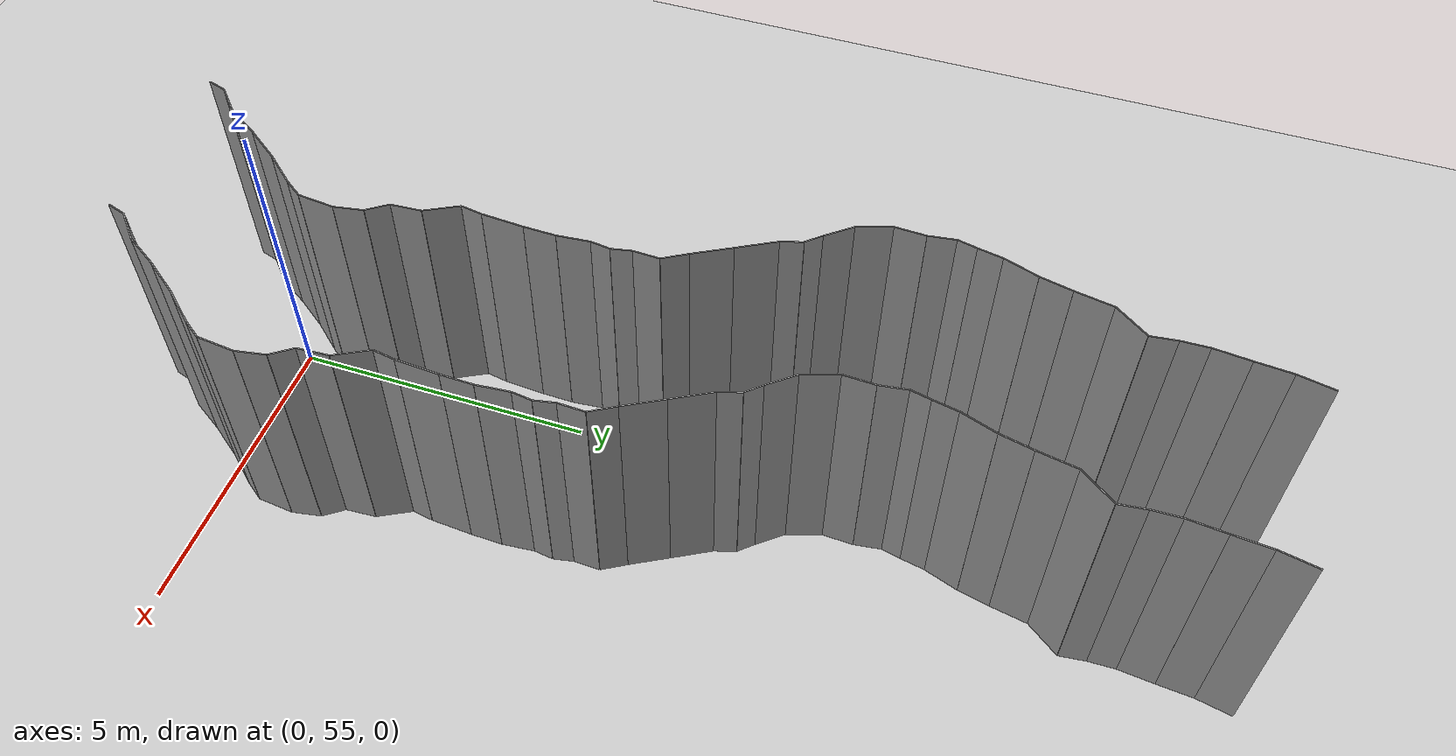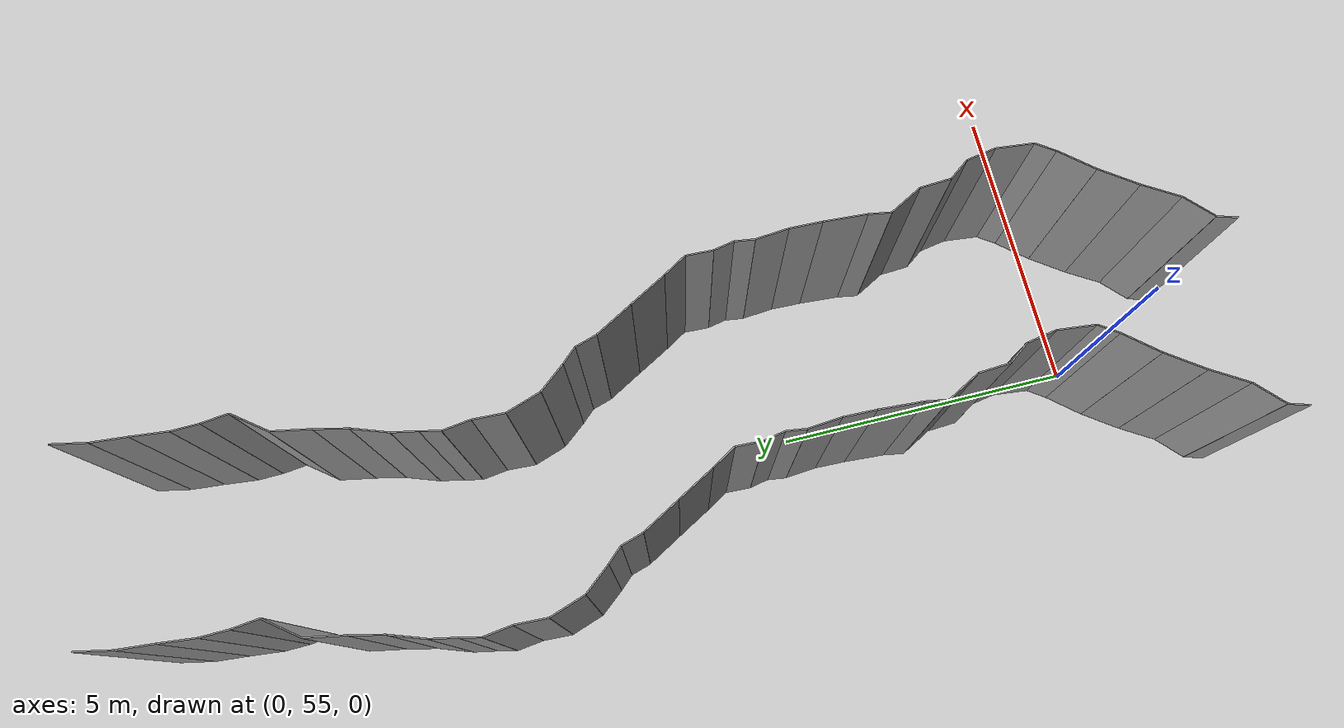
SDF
<sdf version="1.6">
 <world name="default">
  <model name="ground_plane">
   <static>1</static>
   <link name="link">
    <collision name="collision">
     <geometry><plane><normal>0 0 1</normal><size>200 200</size></plane></geometry>
     <surface><friction><ode><mu>100</mu><mu2>50</mu2></ode></friction></surface>
    </collision>
    <visual name="visual">
     <cast_shadows>0</cast_shadows>
     <geometry><plane><normal>0 0 1</normal><size>200 200</size></plane></geometry>
     <material>
      <script><uri>file://media/materials/scripts/gazebo.material</uri><name>Gazebo/Grey</name></script>
     </material>
    </visual>
   </link>
   <pose>0 100 0 0 -0 0</pose>
  </model>
  <model name="wall_224">
   <static>1</static>
   <pose>-1.9449735678447158 53.137342538818686 2 0 0 -0.3003120279993837</pose>
   <link name="link">
    <collision name="collision"><geometry><box><size>0.02 0.329760382934 4</size></box></geometry></collision>
    <visual name="visual">
     <material>
      <script><name>Gazebo/Grey</name><uri>file://media/materials/scripts/gazebo.material</uri></script>
     </material>
     <geometry><box><size>0.02 0.329760382934 4</size></box></geometry>
    </visual>
   </link>
  </model>
  <model name="wall_225">
   <static>1</static>
   <pose>1.0550264321552842 53.137342538818686 2 0 0 -0.3003120279993837</pose>
   <link name="link">
    <collision name="collision"><geometry><box><size>0.02 0.329760382934 4</size></box></geometry></collision>
    <visual name="visual">
     <material>
      <script><name>Gazebo/Grey</name><uri>file://media/materials/scripts/gazebo.material</uri></script>
     </material>
     <geometry><box><size>0.02 0.329760382934 4</size></box></geometry>
    </visual>
   </link>
  </model>
  <model name="wall_226">
   <static>1</static>
   <pose>-1.686195022823692 53.490703709519394 2 0 0 -0.8202322941985053</pose>
   <link name="link">
    <collision name="collision"><geometry><box><size>0.02 0.574327195197 4</size></box></geometry></collision>
    <visual name="visual">
     <material>
      <script><name>Gazebo/Grey</name><uri>file://media/materials/scripts/gazebo.material</uri></script>
     </material>
     <geometry><box><size>0.02 0.574327195197 4</size></box></geometry>
    </visual>
   </link>
  </model>
  <model name="wall_227">
   <static>1</static>
   <pose>1.313804977176308 53.490703709519394 2 0 0 -0.8202322941985053</pose>
   <link name="link">
    <collision name="collision"><geometry><box><size>0.02 0.574327195197 4</size></box></geometry></collision>
    <visual name="visual">
     <material>
      <script><name>Gazebo/Grey</name><uri>file://media/materials/scripts/gazebo.material</uri></script>
     </material>
     <geometry><box><size>0.02 0.574327195197 4</size></box></geometry>
    </visual>
   </link>
  </model>
  <model name="wall_228">
   <static>1</static>
   <pose>-1.3065006371710464 53.96184421103276 2 0 0 -0.5524114289660902</pose>
   <link name="link">
    <collision name="collision"><geometry><box><size>0.02 0.64675811937 4</size></box></geometry></collision>
    <visual name="visual">
     <material>
      <script><name>Gazebo/Grey</name><uri>file://media/materials/scripts/gazebo.material</uri></script>
     </material>
     <geometry><box><size>0.02 0.64675811937 4</size></box></geometry>
    </visual>
   </link>
  </model>
  <model name="wall_229">
   <static>1</static>
   <pose>1.6934993628289536 53.96184421103276 2 0 0 -0.5524114289660902</pose>
   <link name="link">
    <collision name="collision"><geometry><box><size>0.02 0.64675811937 4</size></box></geometry></collision>
    <visual name="visual">
     <material>
      <script><name>Gazebo/Grey</name><uri>file://media/materials/scripts/gazebo.material</uri></script>
     </material>
     <geometry><box><size>0.02 0.64675811937 4</size></box></geometry>
    </visual>
   </link>
  </model>
  <model name="wall_230">
   <static>1</static>
   <pose>-0.9351453693108156 54.51873689497037 2 0 0 -0.6214548294160449</pose>
   <link name="link">
    <collision name="collision"><geometry><box><size>0.02 0.692746168117 4</size></box></geometry></collision>
    <visual name="visual">
     <material>
      <script><name>Gazebo/Grey</name><uri>file://media/materials/scripts/gazebo.material</uri></script>
     </material>
     <geometry><box><size>0.02 0.692746168117 4</size></box></geometry>
    </visual>
   </link>
  </model>
  <model name="wall_231">
   <static>1</static>
   <pose>2.0648546306891844 54.51873689497037 2 0 0 -0.6214548294160449</pose>
   <link name="link">
    <collision name="collision"><geometry><box><size>0.02 0.692746168117 4</size></box></geometry></collision>
    <visual name="visual">
     <material>
      <script><name>Gazebo/Grey</name><uri>file://media/materials/scripts/gazebo.material</uri></script>
     </material>
     <geometry><box><size>0.02 0.692746168117 4</size></box></geometry>
    </visual>
   </link>
  </model>
  <model name="wall_232">
   <static>1</static>
   <pose>-0.5178004614418645 55.053667694533964 2 0 0 -0.7053173902595483</pose>
   <link name="link">
    <collision name="collision"><geometry><box><size>0.02 0.665396263273 4</size></box></geometry></collision>
    <visual name="visual">
     <material>
      <script><name>Gazebo/Grey</name><uri>file://media/materials/scripts/gazebo.material</uri></script>
     </material>
     <geometry><box><size>0.02 0.665396263273 4</size></box></geometry>
    </visual>
   </link>
  </model>
  <model name="wall_233">
   <static>1</static>
   <pose>2.4821995385581355 55.053667694533964 2 0 0 -0.7053173902595483</pose>
   <link name="link">
    <collision name="collision"><geometry><box><size>0.02 0.665396263273 4</size></box></geometry></collision>
    <visual name="visual">
     <material>
      <script><name>Gazebo/Grey</name><uri>file://media/materials/scripts/gazebo.material</uri></script>
     </material>
     <geometry><box><size>0.02 0.665396263273 4</size></box></geometry>
    </visual>
   </link>
  </model>
  <model name="wall_234">
   <static>1</static>
   <pose>-0.20020133641051413 55.45377711792558 2 0 0 -0.6068993597224305</pose>
   <link name="link">
    <collision name="collision"><geometry><box><size>0.02 0.357408063951 4</size></box></geometry></collision>
    <visual name="visual">
     <material>
      <script><name>Gazebo/Grey</name><uri>file://media/materials/scripts/gazebo.material</uri></script>
     </material>
     <geometry><box><size>0.02 0.357408063951 4</size></box></geometry>
    </visual>
   </link>
  </model>
  <model name="wall_235">
   <static>1</static>
   <pose>2.799798663589486 55.45377711792558 2 0 0 -0.6068993597224305</pose>
   <link name="link">
    <collision name="collision"><geometry><box><size>0.02 0.357408063951 4</size></box></geometry></collision>
    <visual name="visual">
     <material>
      <script><name>Gazebo/Grey</name><uri>file://media/materials/scripts/gazebo.material</uri></script>
     </material>
     <geometry><box><size>0.02 0.357408063951 4</size></box></geometry>
    </visual>
   </link>
  </model>
  <model name="wall_236">
   <static>1</static>
   <pose>-0.06674007359757828 55.90515720736865 2 0 0 -0.10318877210391868</pose>
   <link name="link">
    <collision name="collision"><geometry><box><size>0.02 0.612435620124 4</size></box></geometry></collision>
    <visual name="visual">
     <material>
      <script><name>Gazebo/Grey</name><uri>file://media/materials/scripts/gazebo.material</uri></script>
     </material>
     <geometry><box><size>0.02 0.612435620124 4</size></box></geometry>
    </visual>
   </link>
  </model>
  <model name="wall_237">
   <static>1</static>
   <pose>2.933259926402422 55.90515720736865 2 0 0 -0.10318877210391868</pose>
   <link name="link">
    <collision name="collision"><geometry><box><size>0.02 0.612435620124 4</size></box></geometry></collision>
    <visual name="visual">
     <material>
      <script><name>Gazebo/Grey</name><uri>file://media/materials/scripts/gazebo.material</uri></script>
     </material>
     <geometry><box><size>0.02 0.612435620124 4</size></box></geometry>
    </visual>
   </link>
  </model>
  <model name="wall_238">
   <static>1</static>
   <pose>-0.07769156851695419 56.44998617409877 2 0 0 0.17506936760792238</pose>
   <link name="link">
    <collision name="collision"><geometry><box><size>0.02 0.487938407221 4</size></box></geometry></collision>
    <visual name="visual">
     <material>
      <script><name>Gazebo/Grey</name><uri>file://media/materials/scripts/gazebo.material</uri></script>
     </material>
     <geometry><box><size>0.02 0.487938407221 4</size></box></geometry>
    </visual>
   </link>
  </model>
  <model name="wall_239">
   <static>1</static>
   <pose>2.922308431483046 56.44998617409877 2 0 0 0.17506936760792238</pose>
   <link name="link">
    <collision name="collision"><geometry><box><size>0.02 0.487938407221 4</size></box></geometry></collision>
    <visual name="visual">
     <material>
      <script><name>Gazebo/Grey</name><uri>file://media/materials/scripts/gazebo.material</uri></script>
     </material>
     <geometry><box><size>0.02 0.487938407221 4</size></box></geometry>
    </visual>
   </link>
  </model>
  <model name="wall_240">
   <static>1</static>
   <pose>-0.23872327364758544 56.851449280253924 2 0 0 0.6339889679577372</pose>
   <link name="link">
    <collision name="collision"><geometry><box><size>0.02 0.40022069186 4</size></box></geometry></collision>
    <visual name="visual">
     <material>
      <script><name>Gazebo/Grey</name><uri>file://media/materials/scripts/gazebo.material</uri></script>
     </material>
     <geometry><box><size>0.02 0.40022069186 4</size></box></geometry>
    </visual>
   </link>
  </model>
  <model name="wall_241">
   <static>1</static>
   <pose>2.7612767263524147 56.851449280253924 2 0 0 0.6339889679577372</pose>
   <link name="link">
    <collision name="collision"><geometry><box><size>0.02 0.40022069186 4</size></box></geometry></collision>
    <visual name="visual">
     <material>
      <script><name>Gazebo/Grey</name><uri>file://media/materials/scripts/gazebo.material</uri></script>
     </material>
     <geometry><box><size>0.02 0.40022069186 4</size></box></geometry>
    </visual>
   </link>
  </model>
  <model name="wall_242">
   <static>1</static>
   <pose>-0.372732833279823 57.26623104111561 2 0 0 0.06094205244157964</pose>
   <link name="link">
    <collision name="collision"><geometry><box><size>0.02 0.508060473654 4</size></box></geometry></collision>
    <visual name="visual">
     <material>
      <script><name>Gazebo/Grey</name><uri>file://media/materials/scripts/gazebo.material</uri></script>
     </material>
     <geometry><box><size>0.02 0.508060473654 4</size></box></geometry>
    </visual>
   </link>
  </model>
  <model name="wall_243">
   <static>1</static>
   <pose>2.627267166720177 57.26623104111561 2 0 0 0.06094205244157964</pose>
   <link name="link">
    <collision name="collision"><geometry><box><size>0.02 0.508060473654 4</size></box></geometry></collision>
    <visual name="visual">
     <material>
      <script><name>Gazebo/Grey</name><uri>file://media/materials/scripts/gazebo.material</uri></script>
     </material>
     <geometry><box><size>0.02 0.508060473654 4</size></box></geometry>
    </visual>
   </link>
  </model>
  <model name="wall_244">
   <static>1</static>
   <pose>-0.5304146537709179 57.78406428593093 2 0 0 0.49367314558634917</pose>
   <link name="link">
    <collision name="collision"><geometry><box><size>0.02 0.600216030142 4</size></box></geometry></collision>
    <visual name="visual">
     <material>
      <script><name>Gazebo/Grey</name><uri>file://media/materials/scripts/gazebo.material</uri></script>
     </material>
     <geometry><box><size>0.02 0.600216030142 4</size></box></geometry>
    </visual>
   </link>
  </model>
  <model name="wall_245">
   <static>1</static>
   <pose>2.469585346229082 57.78406428593093 2 0 0 0.49367314558634917</pose>
   <link name="link">
    <collision name="collision"><geometry><box><size>0.02 0.600216030142 4</size></box></geometry></collision>
    <visual name="visual">
     <material>
      <script><name>Gazebo/Grey</name><uri>file://media/materials/scripts/gazebo.material</uri></script>
     </material>
     <geometry><box><size>0.02 0.600216030142 4</size></box></geometry>
    </visual>
   </link>
  </model>
  <model name="wall_246">
   <static>1</static>
   <pose>-0.6430417083869369 58.22707455624834 2 0 0 -0.16402676388929902</pose>
   <link name="link">
    <collision name="collision"><geometry><box><size>0.02 0.36233471427 4</size></box></geometry></collision>
    <visual name="visual">
     <material>
      <script><name>Gazebo/Grey</name><uri>file://media/materials/scripts/gazebo.material</uri></script>
     </material>
     <geometry><box><size>0.02 0.36233471427 4</size></box></geometry>
    </visual>
   </link>
  </model>
  <model name="wall_247">
   <static>1</static>
   <pose>2.356958291613063 58.22707455624834 2 0 0 -0.16402676388929902</pose>
   <link name="link">
    <collision name="collision"><geometry><box><size>0.02 0.36233471427 4</size></box></geometry></collision>
    <visual name="visual">
     <material>
      <script><name>Gazebo/Grey</name><uri>file://media/materials/scripts/gazebo.material</uri></script>
     </material>
     <geometry><box><size>0.02 0.36233471427 4</size></box></geometry>
    </visual>
   </link>
  </model>
  <model name="wall_248">
   <static>1</static>
   <pose>-0.5906330013064822 58.754899079173875 2 0 0 -0.06529294609087431</pose>
   <link name="link">
    <collision name="collision"><geometry><box><size>0.02 0.699668553518 4</size></box></geometry></collision>
    <visual name="visual">
     <material>
      <script><name>Gazebo/Grey</name><uri>file://media/materials/scripts/gazebo.material</uri></script>
     </material>
     <geometry><box><size>0.02 0.699668553518 4</size></box></geometry>
    </visual>
   </link>
  </model>
  <model name="wall_249">
   <static>1</static>
   <pose>2.4093669986935176 58.754899079173875 2 0 0 -0.06529294609087431</pose>
   <link name="link">
    <collision name="collision"><geometry><box><size>0.02 0.699668553518 4</size></box></geometry></collision>
    <visual name="visual">
     <material>
      <script><name>Gazebo/Grey</name><uri>file://media/materials/scripts/gazebo.material</uri></script>
     </material>
     <geometry><box><size>0.02 0.699668553518 4</size></box></geometry>
    </visual>
   </link>
  </model>
  <model name="wall_250">
   <static>1</static>
   <pose>-0.5607368006929969 59.36795824437195 2 0 0 -0.026779623550370522</pose>
   <link name="link">
    <collision name="collision"><geometry><box><size>0.02 0.528130012125 4</size></box></geometry></collision>
    <visual name="visual">
     <material>
      <script><name>Gazebo/Grey</name><uri>file://media/materials/scripts/gazebo.material</uri></script>
     </material>
     <geometry><box><size>0.02 0.528130012125 4</size></box></geometry>
    </visual>
   </link>
  </model>
  <model name="wall_251">
   <static>1</static>
   <pose>2.4392631993070033 59.36795824437195 2 0 0 -0.026779623550370522</pose>
   <link name="link">
    <collision name="collision"><geometry><box><size>0.02 0.528130012125 4</size></box></geometry></collision>
    <visual name="visual">
     <material>
      <script><name>Gazebo/Grey</name><uri>file://media/materials/scripts/gazebo.material</uri></script>
     </material>
     <geometry><box><size>0.02 0.528130012125 4</size></box></geometry>
    </visual>
   </link>
  </model>
  <model name="wall_252">
   <static>1</static>
   <pose>-0.5772860545529843 59.900032379019784 2 0 0 0.08787321359918873</pose>
   <link name="link">
    <collision name="collision"><geometry><box><size>0.02 0.538284518892 4</size></box></geometry></collision>
    <visual name="visual">
     <material>
      <script><name>Gazebo/Grey</name><uri>file://media/materials/scripts/gazebo.material</uri></script>
     </material>
     <geometry><box><size>0.02 0.538284518892 4</size></box></geometry>
    </visual>
   </link>
  </model>
  <model name="wall_253">
   <static>1</static>
   <pose>2.4227139454470157 59.900032379019784 2 0 0 0.08787321359918873</pose>
   <link name="link">
    <collision name="collision"><geometry><box><size>0.02 0.538284518892 4</size></box></geometry></collision>
    <visual name="visual">
     <material>
      <script><name>Gazebo/Grey</name><uri>file://media/materials/scripts/gazebo.material</uri></script>
     </material>
     <geometry><box><size>0.02 0.538284518892 4</size></box></geometry>
    </visual>
   </link>
  </model>
  <model name="wall_254">
   <static>1</static>
   <pose>-0.5789524795383816 60.329274231389505 2 0 0 -0.13540693106525903</pose>
   <link name="link">
    <collision name="collision"><geometry><box><size>0.02 0.325253297637 4</size></box></geometry></collision>
    <visual name="visual">
     <material>
      <script><name>Gazebo/Grey</name><uri>file://media/materials/scripts/gazebo.material</uri></script>
     </material>
     <geometry><box><size>0.02 0.325253297637 4</size></box></geometry>
    </visual>
   </link>
  </model>
  <model name="wall_255">
   <static>1</static>
   <pose>2.4210475204616184 60.329274231389505 2 0 0 -0.13540693106525903</pose>
   <link name="link">
    <collision name="collision"><geometry><box><size>0.02 0.325253297637 4</size></box></geometry></collision>
    <visual name="visual">
     <material>
      <script><name>Gazebo/Grey</name><uri>file://media/materials/scripts/gazebo.material</uri></script>
     </material>
     <geometry><box><size>0.02 0.325253297637 4</size></box></geometry>
    </visual>
   </link>
  </model>
  <model name="wall_256">
   <static>1</static>
   <pose>-0.5900085892989108 60.65608827236799 2 0 0 0.19666682595820997</pose>
   <link name="link">
    <collision name="collision"><geometry><box><size>0.02 0.33786490653 4</size></box></geometry></collision>
    <visual name="visual">
     <material>
      <script><name>Gazebo/Grey</name><uri>file://media/materials/scripts/gazebo.material</uri></script>
     </material>
     <geometry><box><size>0.02 0.33786490653 4</size></box></geometry>
    </visual>
   </link>
  </model>
  <model name="wall_257">
   <static>1</static>
   <pose>2.4099914107010894 60.65608827236799 2 0 0 0.19666682595820997</pose>
   <link name="link">
    <collision name="collision"><geometry><box><size>0.02 0.33786490653 4</size></box></geometry></collision>
    <visual name="visual">
     <material>
      <script><name>Gazebo/Grey</name><uri>file://media/materials/scripts/gazebo.material</uri></script>
     </material>
     <geometry><box><size>0.02 0.33786490653 4</size></box></geometry>
    </visual>
   </link>
  </model>
  <model name="wall_258">
   <static>1</static>
   <pose>-0.6139227929413609 61.03855653230782 2 0 0 -0.041930095776834556</pose>
   <link name="link">
    <collision name="collision"><geometry><box><size>0.02 0.433965952082 4</size></box></geometry></collision>
    <visual name="visual">
     <material>
      <script><name>Gazebo/Grey</name><uri>file://media/materials/scripts/gazebo.material</uri></script>
     </material>
     <geometry><box><size>0.02 0.433965952082 4</size></box></geometry>
    </visual>
   </link>
  </model>
  <model name="wall_259">
   <static>1</static>
   <pose>2.386077207058639 61.03855653230782 2 0 0 -0.041930095776834556</pose>
   <link name="link">
    <collision name="collision"><geometry><box><size>0.02 0.433965952082 4</size></box></geometry></collision>
    <visual name="visual">
     <material>
      <script><name>Gazebo/Grey</name><uri>file://media/materials/scripts/gazebo.material</uri></script>
     </material>
     <geometry><box><size>0.02 0.433965952082 4</size></box></geometry>
    </visual>
   </link>
  </model>
  <model name="wall_260">
   <static>1</static>
   <pose>-0.7194612644053958 61.445849421383706 2 0 0 0.5417059270704617</pose>
   <link name="link">
    <collision name="collision"><geometry><box><size>0.02 0.444663582199 4</size></box></geometry></collision>
    <visual name="visual">
     <material>
      <script><name>Gazebo/Grey</name><uri>file://media/materials/scripts/gazebo.material</uri></script>
     </material>
     <geometry><box><size>0.02 0.444663582199 4</size></box></geometry>
    </visual>
   </link>
  </model>
  <model name="wall_261">
   <static>1</static>
   <pose>2.2805387355946043 61.445849421383706 2 0 0 0.5417059270704617</pose>
   <link name="link">
    <collision name="collision"><geometry><box><size>0.02 0.444663582199 4</size></box></geometry></collision>
    <visual name="visual">
     <material>
      <script><name>Gazebo/Grey</name><uri>file://media/materials/scripts/gazebo.material</uri></script>
     </material>
     <geometry><box><size>0.02 0.444663582199 4</size></box></geometry>
    </visual>
   </link>
  </model>
  <model name="wall_262">
   <static>1</static>
   <pose>-0.9976445039592294 61.929195126315165 2 0 0 0.5093335650366573</pose>
   <link name="link">
    <collision name="collision"><geometry><box><size>0.02 0.670840125173 4</size></box></geometry></collision>
    <visual name="visual">
     <material>
      <script><name>Gazebo/Grey</name><uri>file://media/materials/scripts/gazebo.material</uri></script>
     </material>
     <geometry><box><size>0.02 0.670840125173 4</size></box></geometry>
    </visual>
   </link>
  </model>
  <model name="wall_263">
   <static>1</static>
   <pose>2.002355496040771 61.929195126315165 2 0 0 0.5093335650366573</pose>
   <link name="link">
    <collision name="collision"><geometry><box><size>0.02 0.670840125173 4</size></box></geometry></collision>
    <visual name="visual">
     <material>
      <script><name>Gazebo/Grey</name><uri>file://media/materials/scripts/gazebo.material</uri></script>
     </material>
     <geometry><box><size>0.02 0.670840125173 4</size></box></geometry>
    </visual>
   </link>
  </model>
  <model name="wall_264">
   <static>1</static>
   <pose>-1.3296071339518234 62.52056718321044 2 0 0 0.5136402551735735</pose>
   <link name="link">
    <collision name="collision"><geometry><box><size>0.02 0.685511200621 4</size></box></geometry></collision>
    <visual name="visual">
     <material>
      <script><name>Gazebo/Grey</name><uri>file://media/materials/scripts/gazebo.material</uri></script>
     </material>
     <geometry><box><size>0.02 0.685511200621 4</size></box></geometry>
    </visual>
   </link>
  </model>
  <model name="wall_265">
   <static>1</static>
   <pose>1.6703928660481766 62.52056718321044 2 0 0 0.5136402551735735</pose>
   <link name="link">
    <collision name="collision"><geometry><box><size>0.02 0.685511200621 4</size></box></geometry></collision>
    <visual name="visual">
     <material>
      <script><name>Gazebo/Grey</name><uri>file://media/materials/scripts/gazebo.material</uri></script>
     </material>
     <geometry><box><size>0.02 0.685511200621 4</size></box></geometry>
    </visual>
   </link>
  </model>
  <model name="wall_266">
   <static>1</static>
   <pose>-1.5513975766023025 62.99376113735945 2 0 0 0.2965807087464509</pose>
   <link name="link">
    <collision name="collision"><geometry><box><size>0.02 0.365281644663 4</size></box></geometry></collision>
    <visual name="visual">
     <material>
      <script><name>Gazebo/Grey</name><uri>file://media/materials/scripts/gazebo.material</uri></script>
     </material>
     <geometry><box><size>0.02 0.365281644663 4</size></box></geometry>
    </visual>
   </link>
  </model>
  <model name="wall_267">
   <static>1</static>
   <pose>1.4486024233976975 62.99376113735945 2 0 0 0.2965807087464509</pose>
   <link name="link">
    <collision name="collision"><geometry><box><size>0.02 0.365281644663 4</size></box></geometry></collision>
    <visual name="visual">
     <material>
      <script><name>Gazebo/Grey</name><uri>file://media/materials/scripts/gazebo.material</uri></script>
     </material>
     <geometry><box><size>0.02 0.365281644663 4</size></box></geometry>
    </visual>
   </link>
  </model>
  <model name="wall_268">
   <static>1</static>
   <pose>-1.7109868577123888 63.28268523792472 2 0 0 0.7489241180001269</pose>
   <link name="link">
    <collision name="collision"><geometry><box><size>0.02 0.311998153687 4</size></box></geometry></collision>
    <visual name="visual">
     <material>
      <script><name>Gazebo/Grey</name><uri>file://media/materials/scripts/gazebo.material</uri></script>
     </material>
     <geometry><box><size>0.02 0.311998153687 4</size></box></geometry>
    </visual>
   </link>
  </model>
  <model name="wall_269">
   <static>1</static>
   <pose>1.2890131422876112 63.28268523792472 2 0 0 0.7489241180001269</pose>
   <link name="link">
    <collision name="collision"><geometry><box><size>0.02 0.311998153687 4</size></box></geometry></collision>
    <visual name="visual">
     <material>
      <script><name>Gazebo/Grey</name><uri>file://media/materials/scripts/gazebo.material</uri></script>
     </material>
     <geometry><box><size>0.02 0.311998153687 4</size></box></geometry>
    </visual>
   </link>
  </model>
  <model name="wall_270">
   <static>1</static>
   <pose>-1.9828245941430729 63.597771470901165 2 0 0 0.6896269079793338</pose>
   <link name="link">
    <collision name="collision"><geometry><box><size>0.02 0.520631019374 4</size></box></geometry></collision>
    <visual name="visual">
     <material>
      <script><name>Gazebo/Grey</name><uri>file://media/materials/scripts/gazebo.material</uri></script>
     </material>
     <geometry><box><size>0.02 0.520631019374 4</size></box></geometry>
    </visual>
   </link>
  </model>
  <model name="wall_271">
   <static>1</static>
   <pose>1.0171754058569271 63.597771470901165 2 0 0 0.6896269079793338</pose>
   <link name="link">
    <collision name="collision"><geometry><box><size>0.02 0.520631019374 4</size></box></geometry></collision>
    <visual name="visual">
     <material>
      <script><name>Gazebo/Grey</name><uri>file://media/materials/scripts/gazebo.material</uri></script>
     </material>
     <geometry><box><size>0.02 0.520631019374 4</size></box></geometry>
    </visual>
   </link>
  </model>
  <model name="wall_272">
   <static>1</static>
   <pose>-2.2429738617353876 64.07683240614267 2 0 0 0.32749641238547667</pose>
   <link name="link">
    <collision name="collision"><geometry><box><size>0.02 0.587699504255 4</size></box></geometry></collision>
    <visual name="visual">
     <material>
      <script><name>Gazebo/Grey</name><uri>file://media/materials/scripts/gazebo.material</uri></script>
     </material>
     <geometry><box><size>0.02 0.587699504255 4</size></box></geometry>
    </visual>
   </link>
  </model>
  <model name="wall_273">
   <static>1</static>
   <pose>0.7570261382646124 64.07683240614267 2 0 0 0.32749641238547667</pose>
   <link name="link">
    <collision name="collision"><geometry><box><size>0.02 0.587699504255 4</size></box></geometry></collision>
    <visual name="visual">
     <material>
      <script><name>Gazebo/Grey</name><uri>file://media/materials/scripts/gazebo.material</uri></script>
     </material>
     <geometry><box><size>0.02 0.587699504255 4</size></box></geometry>
    </visual>
   </link>
  </model>
  <model name="wall_274">
   <static>1</static>
   <pose>-2.3263014850209554 64.6092782515142 2 0 0 -0.044013422554000765</pose>
   <link name="link">
    <collision name="collision"><geometry><box><size>0.02 0.508920890819 4</size></box></geometry></collision>
    <visual name="visual">
     <material>
      <script><name>Gazebo/Grey</name><uri>file://media/materials/scripts/gazebo.material</uri></script>
     </material>
     <geometry><box><size>0.02 0.508920890819 4</size></box></geometry>
    </visual>
   </link>
  </model>
  <model name="wall_275">
   <static>1</static>
   <pose>0.6736985149790446 64.6092782515142 2 0 0 -0.044013422554000765</pose>
   <link name="link">
    <collision name="collision"><geometry><box><size>0.02 0.508920890819 4</size></box></geometry></collision>
    <visual name="visual">
     <material>
      <script><name>Gazebo/Grey</name><uri>file://media/materials/scripts/gazebo.material</uri></script>
     </material>
     <geometry><box><size>0.02 0.508920890819 4</size></box></geometry>
    </visual>
   </link>
  </model>
  <model name="wall_276">
   <static>1</static>
   <pose>-2.3458272141879015 65.08710510944627 2 0 0 0.13653353614938774</pose>
   <link name="link">
    <collision name="collision"><geometry><box><size>0.02 0.451426764153 4</size></box></geometry></collision>
    <visual name="visual">
     <material>
      <script><name>Gazebo/Grey</name><uri>file://media/materials/scripts/gazebo.material</uri></script>
     </material>
     <geometry><box><size>0.02 0.451426764153 4</size></box></geometry>
    </visual>
   </link>
  </model>
  <model name="wall_277">
   <static>1</static>
   <pose>0.6541727858120985 65.08710510944627 2 0 0 0.13653353614938774</pose>
   <link name="link">
    <collision name="collision"><geometry><box><size>0.02 0.451426764153 4</size></box></geometry></collision>
    <visual name="visual">
     <material>
      <script><name>Gazebo/Grey</name><uri>file://media/materials/scripts/gazebo.material</uri></script>
     </material>
     <geometry><box><size>0.02 0.451426764153 4</size></box></geometry>
    </visual>
   </link>
  </model>
  <model name="wall_278">
   <static>1</static>
   <pose>-2.340099156571946 65.4699999332929 2 0 0 -0.22496494202168169</pose>
   <link name="link">
    <collision name="collision"><geometry><box><size>0.02 0.326798662367 4</size></box></geometry></collision>
    <visual name="visual">
     <material>
      <script><name>Gazebo/Grey</name><uri>file://media/materials/scripts/gazebo.material</uri></script>
     </material>
     <geometry><box><size>0.02 0.326798662367 4</size></box></geometry>
    </visual>
   </link>
  </model>
  <model name="wall_279">
   <static>1</static>
   <pose>0.659900843428054 65.4699999332929 2 0 0 -0.22496494202168169</pose>
   <link name="link">
    <collision name="collision"><geometry><box><size>0.02 0.326798662367 4</size></box></geometry></collision>
    <visual name="visual">
     <material>
      <script><name>Gazebo/Grey</name><uri>file://media/materials/scripts/gazebo.material</uri></script>
     </material>
     <geometry><box><size>0.02 0.326798662367 4</size></box></geometry>
    </visual>
   </link>
  </model>
  <model name="wall_280">
   <static>1</static>
   <pose>-2.2638740644591095 65.83225054909556 2 0 0 -0.1935151203139474</pose>
   <link name="link">
    <collision name="collision"><geometry><box><size>0.02 0.413658487382 4</size></box></geometry></collision>
    <visual name="visual">
     <material>
      <script><name>Gazebo/Grey</name><uri>file://media/materials/scripts/gazebo.material</uri></script>
     </material>
     <geometry><box><size>0.02 0.413658487382 4</size></box></geometry>
    </visual>
   </link>
  </model>
  <model name="wall_281">
   <static>1</static>
   <pose>0.7361259355408905 65.83225054909556 2 0 0 -0.1935151203139474</pose>
   <link name="link">
    <collision name="collision"><geometry><box><size>0.02 0.413658487382 4</size></box></geometry></collision>
    <visual name="visual">
     <material>
      <script><name>Gazebo/Grey</name><uri>file://media/materials/scripts/gazebo.material</uri></script>
     </material>
     <geometry><box><size>0.02 0.413658487382 4</size></box></geometry>
    </visual>
   </link>
  </model>
  <model name="wall_282">
   <static>1</static>
   <pose>-2.124926648218917 66.31712203610041 2 0 0 -0.33827352437997465</pose>
   <link name="link">
    <collision name="collision"><geometry><box><size>0.02 0.597676630433 4</size></box></geometry></collision>
    <visual name="visual">
     <material>
      <script><name>Gazebo/Grey</name><uri>file://media/materials/scripts/gazebo.material</uri></script>
     </material>
     <geometry><box><size>0.02 0.597676630433 4</size></box></geometry>
    </visual>
   </link>
  </model>
  <model name="wall_283">
   <static>1</static>
   <pose>0.8750733517810829 66.31712203610041 2 0 0 -0.33827352437997465</pose>
   <link name="link">
    <collision name="collision"><geometry><box><size>0.02 0.597676630433 4</size></box></geometry></collision>
    <visual name="visual">
     <material>
      <script><name>Gazebo/Grey</name><uri>file://media/materials/scripts/gazebo.material</uri></script>
     </material>
     <geometry><box><size>0.02 0.597676630433 4</size></box></geometry>
    </visual>
   </link>
  </model>
  <model name="wall_284">
   <static>1</static>
   <pose>-1.9666757196575873 66.85927590861522 2 0 0 -0.22322374734186948</pose>
   <link name="link">
    <collision name="collision"><geometry><box><size>0.02 0.533744853466 4</size></box></geometry></collision>
    <visual name="visual">
     <material>
      <script><name>Gazebo/Grey</name><uri>file://media/materials/scripts/gazebo.material</uri></script>
     </material>
     <geometry><box><size>0.02 0.533744853466 4</size></box></geometry>
    </visual>
   </link>
  </model>
  <model name="wall_285">
   <static>1</static>
   <pose>1.0333242803424127 66.85927590861522 2 0 0 -0.22322374734186948</pose>
   <link name="link">
    <collision name="collision"><geometry><box><size>0.02 0.533744853466 4</size></box></geometry></collision>
    <visual name="visual">
     <material>
      <script><name>Gazebo/Grey</name><uri>file://media/materials/scripts/gazebo.material</uri></script>
     </material>
     <geometry><box><size>0.02 0.533744853466 4</size></box></geometry>
    </visual>
   </link>
  </model>
  <model name="wall_286">
   <static>1</static>
   <pose>-1.8501535546744539 67.42777687968471 2 0 0 -0.18423999896826432</pose>
   <link name="link">
    <collision name="collision"><geometry><box><size>0.02 0.62711331805 4</size></box></geometry></collision>
    <visual name="visual">
     <material>
      <script><name>Gazebo/Grey</name><uri>file://media/materials/scripts/gazebo.material</uri></script>
     </material>
     <geometry><box><size>0.02 0.62711331805 4</size></box></geometry>
    </visual>
   </link>
  </model>
  <model name="wall_287">
   <static>1</static>
   <pose>1.1498464453255461 67.42777687968471 2 0 0 -0.18423999896826432</pose>
   <link name="link">
    <collision name="collision"><geometry><box><size>0.02 0.62711331805 4</size></box></geometry></collision>
    <visual name="visual">
     <material>
      <script><name>Gazebo/Grey</name><uri>file://media/materials/scripts/gazebo.material</uri></script>
     </material>
     <geometry><box><size>0.02 0.62711331805 4</size></box></geometry>
    </visual>
   </link>
  </model>
  <model name="wall_288">
   <static>1</static>
   <pose>-1.5934448708124078 67.99626060975986 2 0 0 -0.6534839757909292</pose>
   <link name="link">
    <collision name="collision"><geometry><box><size>0.02 0.655525039774 4</size></box></geometry></collision>
    <visual name="visual">
     <material>
      <script><name>Gazebo/Grey</name><uri>file://media/materials/scripts/gazebo.material</uri></script>
     </material>
     <geometry><box><size>0.02 0.655525039774 4</size></box></geometry>
    </visual>
   </link>
  </model>
  <model name="wall_289">
   <static>1</static>
   <pose>1.4065551291875922 67.99626060975986 2 0 0 -0.6534839757909292</pose>
   <link name="link">
    <collision name="collision"><geometry><box><size>0.02 0.655525039774 4</size></box></geometry></collision>
    <visual name="visual">
     <material>
      <script><name>Gazebo/Grey</name><uri>file://media/materials/scripts/gazebo.material</uri></script>
     </material>
     <geometry><box><size>0.02 0.655525039774 4</size></box></geometry>
    </visual>
   </link>
  </model>
  <model name="wall_290">
   <static>1</static>
   <pose>-1.4191847567239988 68.46956359507034 2 0 0 0.11682263549652025</pose>
   <link name="link">
    <collision name="collision"><geometry><box><size>0.02 0.429062911975 4</size></box></geometry></collision>
    <visual name="visual">
     <material>
      <script><name>Gazebo/Grey</name><uri>file://media/materials/scripts/gazebo.material</uri></script>
     </material>
     <geometry><box><size>0.02 0.429062911975 4</size></box></geometry>
    </visual>
   </link>
  </model>
  <model name="wall_291">
   <static>1</static>
   <pose>1.5808152432760012 68.46956359507034 2 0 0 0.11682263549652025</pose>
   <link name="link">
    <collision name="collision"><geometry><box><size>0.02 0.429062911975 4</size></box></geometry></collision>
    <visual name="visual">
     <material>
      <script><name>Gazebo/Grey</name><uri>file://media/materials/scripts/gazebo.material</uri></script>
     </material>
     <geometry><box><size>0.02 0.429062911975 4</size></box></geometry>
    </visual>
   </link>
  </model>
  <model name="wall_292">
   <static>1</static>
   <pose>-1.448801555399543 68.90338190590089 2 0 0 0.02088780865255723</pose>
   <link name="link">
    <collision name="collision"><geometry><box><size>0.02 0.441594535958 4</size></box></geometry></collision>
    <visual name="visual">
     <material>
      <script><name>Gazebo/Grey</name><uri>file://media/materials/scripts/gazebo.material</uri></script>
     </material>
     <geometry><box><size>0.02 0.441594535958 4</size></box></geometry>
    </visual>
   </link>
  </model>
  <model name="wall_293">
   <static>1</static>
   <pose>1.551198444600457 68.90338190590089 2 0 0 0.02088780865255723</pose>
   <link name="link">
    <collision name="collision"><geometry><box><size>0.02 0.441594535958 4</size></box></geometry></collision>
    <visual name="visual">
     <material>
      <script><name>Gazebo/Grey</name><uri>file://media/materials/scripts/gazebo.material</uri></script>
     </material>
     <geometry><box><size>0.02 0.441594535958 4</size></box></geometry>
    </visual>
   </link>
  </model>
  <model name="wall_294">
   <static>1</static>
   <pose>-1.423249498975075 69.41353545932046 2 0 0 -0.10385180178515742</pose>
   <link name="link">
    <collision name="collision"><geometry><box><size>0.02 0.5819442736 4</size></box></geometry></collision>
    <visual name="visual">
     <material>
      <script><name>Gazebo/Grey</name><uri>file://media/materials/scripts/gazebo.material</uri></script>
     </material>
     <geometry><box><size>0.02 0.5819442736 4</size></box></geometry>
    </visual>
   </link>
  </model>
  <model name="wall_295">
   <static>1</static>
   <pose>1.576750501024925 69.41353545932046 2 0 0 -0.10385180178515742</pose>
   <link name="link">
    <collision name="collision"><geometry><box><size>0.02 0.5819442736 4</size></box></geometry></collision>
    <visual name="visual">
     <material>
      <script><name>Gazebo/Grey</name><uri>file://media/materials/scripts/gazebo.material</uri></script>
     </material>
     <geometry><box><size>0.02 0.5819442736 4</size></box></geometry>
    </visual>
   </link>
  </model>
  <model name="wall_296">
   <static>1</static>
   <pose>-1.3685060077278801 69.99148073780722 2 0 0 -0.08498138841446515</pose>
   <link name="link">
    <collision name="collision"><geometry><box><size>0.02 0.579171739085 4</size></box></geometry></collision>
    <visual name="visual">
     <material>
      <script><name>Gazebo/Grey</name><uri>file://media/materials/scripts/gazebo.material</uri></script>
     </material>
     <geometry><box><size>0.02 0.579171739085 4</size></box></geometry>
    </visual>
   </link>
  </model>
  <model name="wall_297">
   <static>1</static>
   <pose>1.6314939922721199 69.99148073780722 2 0 0 -0.08498138841446515</pose>
   <link name="link">
    <collision name="collision"><geometry><box><size>0.02 0.579171739085 4</size></box></geometry></collision>
    <visual name="visual">
     <material>
      <script><name>Gazebo/Grey</name><uri>file://media/materials/scripts/gazebo.material</uri></script>
     </material>
     <geometry><box><size>0.02 0.579171739085 4</size></box></geometry>
    </visual>
   </link>
  </model>
  <model name="wall_298">
   <static>1</static>
   <pose>-1.2862126261782068 70.56495383527404 2 0 0 -0.1998481345914624</pose>
   <link name="link">
    <collision name="collision"><geometry><box><size>0.02 0.581437033184 4</size></box></geometry></collision>
    <visual name="visual">
     <material>
      <script><name>Gazebo/Grey</name><uri>file://media/materials/scripts/gazebo.material</uri></script>
     </material>
     <geometry><box><size>0.02 0.581437033184 4</size></box></geometry>
    </visual>
   </link>
  </model>
  <model name="wall_299">
   <static>1</static>
   <pose>1.7137873738217932 70.56495383527404 2 0 0 -0.1998481345914624</pose>
   <link name="link">
    <collision name="collision"><geometry><box><size>0.02 0.581437033184 4</size></box></geometry></collision>
    <visual name="visual">
     <material>
      <script><name>Gazebo/Grey</name><uri>file://media/materials/scripts/gazebo.material</uri></script>
     </material>
     <geometry><box><size>0.02 0.581437033184 4</size></box></geometry>
    </visual>
   </link>
  </model>
 </world>
</sdf>
